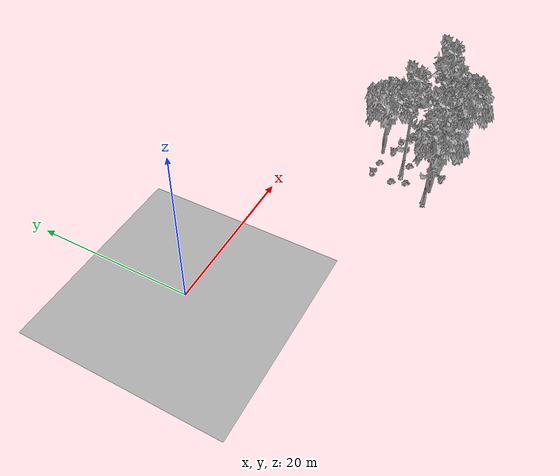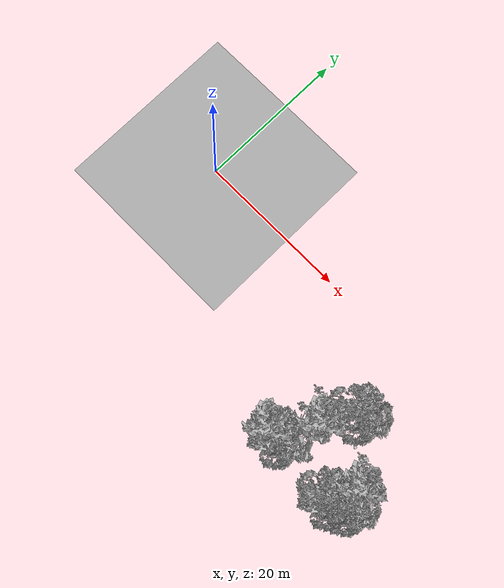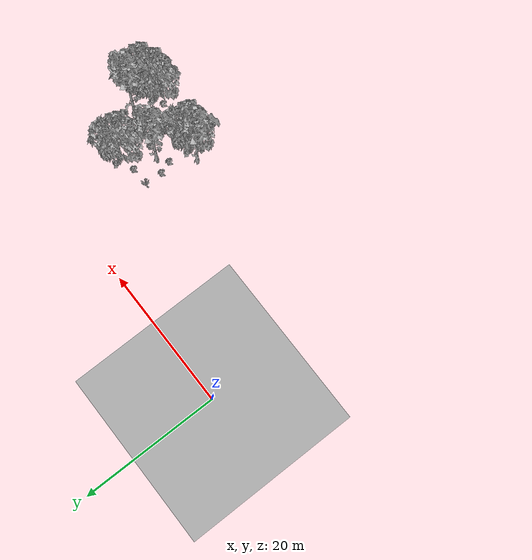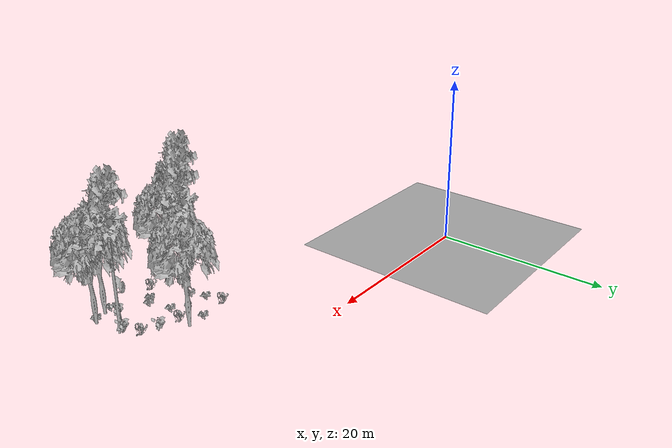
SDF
<sdf version="1.7">
 <world name="default">
  <model name="ground_plane">
   <static>1</static>
   <link name="link">
    <collision name="collision">
     <pose>-50 0 0 0 -0 0</pose>
     <geometry><plane><normal>0 0 1</normal><size>80 80</size></plane></geometry>
     <surface><contact><ode><min_depth>0.01</min_depth><max_vel>0</max_vel></ode></contact></surface>
    </collision>
    <visual name="grass">
     <cast_shadows>0</cast_shadows>
     <geometry>
      <mesh>
       <scale>0.46714285714285714 0.46714285714285714 0.1</scale>
       <uri>file://grass_plane/meshes/grass_plane.dae</uri>
      </mesh>
     </geometry>
    </visual>
   </link>
  </model>
  <model name="Tree 54">
   <static>1</static>
   <pose>26.59764709530539 -18.022613680822516 0 1.57079 -0 0</pose>
   <link name="link">
    <collision name="collision">
     <geometry><mesh><scale>3.5 5 3.5</scale><uri>model://tree_9/meshes/tree_9.obj</uri></mesh></geometry>
    </collision>
    <visual name="visual">
     <geometry><mesh><scale>3.5 5 3.5</scale><uri>model://tree_9/meshes/tree_9.obj</uri></mesh></geometry>
    </visual>
   </link>
  </model>
  <model name="Tree 80">
   <static>1</static>
   <pose>37.39226768586549 -15.485645370310799 0 1.57079 -0 0</pose>
   <link name="link">
    <collision name="collision">
     <geometry><mesh><scale>3.5 5 3.5</scale><uri>model://tree_9/meshes/tree_9.obj</uri></mesh></geometry>
    </collision>
    <visual name="visual">
     <geometry><mesh><scale>3.5 5 3.5</scale><uri>model://tree_9/meshes/tree_9.obj</uri></mesh></geometry>
    </visual>
   </link>
  </model>
  <model name="Tree 230">
   <static>1</static>
   <pose>38.46898598830006 -17.81733464807357 0 1.57079 -0 0</pose>
   <link name="link">
    <collision name="collision">
     <geometry><mesh><scale>3.5 5 3.5</scale><uri>model://tree_2/meshes/tree_2.obj</uri></mesh></geometry>
    </collision>
    <visual name="visual">
     <geometry><mesh><scale>3.5 5 3.5</scale><uri>model://tree_2/meshes/tree_2.obj</uri></mesh></geometry>
    </visual>
   </link>
  </model>
  <model name="Tree 338">
   <static>1</static>
   <pose>32.93583659797366 -10.030470318066705 0 1.57079 -0 0</pose>
   <link name="link">
    <collision name="collision">
     <geometry><mesh><scale>3.5 5 3.5</scale><uri>model://tree_2/meshes/tree_2.obj</uri></mesh></geometry>
    </collision>
    <visual name="visual">
     <geometry><mesh><scale>3.5 5 3.5</scale><uri>model://tree_2/meshes/tree_2.obj</uri></mesh></geometry>
    </visual>
   </link>
  </model>
  <model name="Tree 371">
   <static>1</static>
   <pose>30.08030520435321 -13.779856800431169 0 1.57079 -0 0</pose>
   <link name="link">
    <collision name="collision">
     <geometry><mesh><scale>3.5 5 3.5</scale><uri>model://tree_9/meshes/tree_9.obj</uri></mesh></geometry>
    </collision>
    <visual name="visual">
     <geometry><mesh><scale>3.5 5 3.5</scale><uri>model://tree_9/meshes/tree_9.obj</uri></mesh></geometry>
    </visual>
   </link>
  </model>
  <model name="Tree 426">
   <static>1</static>
   <pose>36.82441149007168 -18.714104671446343 0 1.57079 -0 0</pose>
   <link name="link">
    <collision name="collision">
     <geometry><mesh><scale>3.5 5 3.5</scale><uri>model://tree_2/meshes/tree_2.obj</uri></mesh></geometry>
    </collision>
    <visual name="visual">
     <geometry><mesh><scale>3.5 5 3.5</scale><uri>model://tree_2/meshes/tree_2.obj</uri></mesh></geometry>
    </visual>
   </link>
  </model>
  <model name="Tree 538">
   <static>1</static>
   <pose>28.614526150773074 -18.050153631286605 0 1.57079 -0 0</pose>
   <link name="link">
    <collision name="collision">
     <geometry><mesh><scale>3.5 5 3.5</scale><uri>model://tree_2/meshes/tree_2.obj</uri></mesh></geometry>
    </collision>
    <visual name="visual">
     <geometry><mesh><scale>3.5 5 3.5</scale><uri>model://tree_2/meshes/tree_2.obj</uri></mesh></geometry>
    </visual>
   </link>
  </model>
  <model name="Bush 68">
   <static>1</static>
   <pose>33.19026515405345 -11.434469333602042 0 1.57079 -0 0</pose>
   <link name="link">
    <collision name="collision">
     <geometry><mesh><scale>2 2 2</scale><uri>model://bush_4/meshes/bush_4.obj</uri></mesh></geometry>
     <surface><contact><collide_without_contact>false</collide_without_contact></contact></surface>
    </collision>
    <visual name="visual">
     <geometry><mesh><scale>2 2 2</scale><uri>model://bush_4/meshes/bush_4.obj</uri></mesh></geometry>
    </visual>
   </link>
  </model>
  <model name="Bush 111">
   <static>1</static>
   <pose>35.80478859081279 -19.32915524868494 0 1.57079 -0 0</pose>
   <link name="link">
    <collision name="collision">
     <geometry><mesh><scale>2 2 2</scale><uri>model://bush_2/meshes/bush_2.obj</uri></mesh></geometry>
     <surface><contact><collide_without_contact>false</collide_without_contact></contact></surface>
    </collision>
    <visual name="visual">
     <geometry><mesh><scale>2 2 2</scale><uri>model://bush_2/meshes/bush_2.obj</uri></mesh></geometry>
    </visual>
   </link>
  </model>
  <model name="Bush 118">
   <static>1</static>
   <pose>38.04031944414052 -18.675204157220968 0 1.57079 -0 0</pose>
   <link name="link">
    <collision name="collision">
     <geometry><mesh><scale>2 2 2</scale><uri>model://bush_2/meshes/bush_2.obj</uri></mesh></geometry>
     <surface><contact><collide_without_contact>false</collide_without_contact></contact></surface>
    </collision>
    <visual name="visual">
     <geometry><mesh><scale>2 2 2</scale><uri>model://bush_2/meshes/bush_2.obj</uri></mesh></geometry>
    </visual>
   </link>
  </model>
  <model name="Bush 124">
   <static>1</static>
   <pose>35.52376025473241 -11.69950424461172 0 1.57079 -0 0</pose>
   <link name="link">
    <collision name="collision">
     <geometry><mesh><scale>2 2 2</scale><uri>model://bush_0/meshes/bush_0.obj</uri></mesh></geometry>
     <surface><contact><collide_without_contact>false</collide_without_contact></contact></surface>
    </collision>
    <visual name="visual">
     <geometry><mesh><scale>2 2 2</scale><uri>model://bush_0/meshes/bush_0.obj</uri></mesh></geometry>
    </visual>
   </link>
  </model>
  <model name="Bush 225">
   <static>1</static>
   <pose>32.75467360908317 -16.882839646717542 0 1.57079 -0 0</pose>
   <link name="link">
    <collision name="collision">
     <geometry><mesh><scale>2 2 2</scale><uri>model://bush_2/meshes/bush_2.obj</uri></mesh></geometry>
     <surface><contact><collide_without_contact>false</collide_without_contact></contact></surface>
    </collision>
    <visual name="visual">
     <geometry><mesh><scale>2 2 2</scale><uri>model://bush_2/meshes/bush_2.obj</uri></mesh></geometry>
    </visual>
   </link>
  </model>
  <model name="Bush 255">
   <static>1</static>
   <pose>28.095140048945368 -13.163715731252008 0 1.57079 -0 0</pose>
   <link name="link">
    <collision name="collision">
     <geometry><mesh><scale>2 2 2</scale><uri>model://bush_2/meshes/bush_2.obj</uri></mesh></geometry>
     <surface><contact><collide_without_contact>false</collide_without_contact></contact></surface>
    </collision>
    <visual name="visual">
     <geometry><mesh><scale>2 2 2</scale><uri>model://bush_2/meshes/bush_2.obj</uri></mesh></geometry>
    </visual>
   </link>
  </model>
  <model name="Bush 330">
   <static>1</static>
   <pose>30.80464720744095 -10.476297341806902 0 1.57079 -0 0</pose>
   <link name="link">
    <collision name="collision">
     <geometry><mesh><scale>2 2 2</scale><uri>model://bush_2/meshes/bush_2.obj</uri></mesh></geometry>
     <surface><contact><collide_without_contact>false</collide_without_contact></contact></surface>
    </collision>
    <visual name="visual">
     <geometry><mesh><scale>2 2 2</scale><uri>model://bush_2/meshes/bush_2.obj</uri></mesh></geometry>
    </visual>
   </link>
  </model>
  <model name="Bush 348">
   <static>1</static>
   <pose>28.07912535090702 -10.55582489105771 0 1.57079 -0 0</pose>
   <link name="link">
    <collision name="collision">
     <geometry><mesh><scale>2 2 2</scale><uri>model://bush_4/meshes/bush_4.obj</uri></mesh></geometry>
     <surface><contact><collide_without_contact>false</collide_without_contact></contact></surface>
    </collision>
    <visual name="visual">
     <geometry><mesh><scale>2 2 2</scale><uri>model://bush_4/meshes/bush_4.obj</uri></mesh></geometry>
    </visual>
   </link>
  </model>
  <model name="Bush 427">
   <static>1</static>
   <pose>36.58618998376366 -17.070303188608218 0 1.57079 -0 0</pose>
   <link name="link">
    <collision name="collision">
     <geometry><mesh><scale>2 2 2</scale><uri>model://bush_0/meshes/bush_0.obj</uri></mesh></geometry>
     <surface><contact><collide_without_contact>false</collide_without_contact></contact></surface>
    </collision>
    <visual name="visual">
     <geometry><mesh><scale>2 2 2</scale><uri>model://bush_0/meshes/bush_0.obj</uri></mesh></geometry>
    </visual>
   </link>
  </model>
  <model name="Bush 428">
   <static>1</static>
   <pose>32.04037735347124 -14.22271197097696 0 1.57079 -0 0</pose>
   <link name="link">
    <collision name="collision">
     <geometry><mesh><scale>2 2 2</scale><uri>model://bush_2/meshes/bush_2.obj</uri></mesh></geometry>
     <surface><contact><collide_without_contact>false</collide_without_contact></contact></surface>
    </collision>
    <visual name="visual">
     <geometry><mesh><scale>2 2 2</scale><uri>model://bush_2/meshes/bush_2.obj</uri></mesh></geometry>
    </visual>
   </link>
  </model>
  <model name="Bush 471">
   <static>1</static>
   <pose>30.967603357822327 -18.818570762484768 0 1.57079 -0 0</pose>
   <link name="link">
    <collision name="collision">
     <geometry><mesh><scale>2 2 2</scale><uri>model://bush_4/meshes/bush_4.obj</uri></mesh></geometry>
     <surface><contact><collide_without_contact>false</collide_without_contact></contact></surface>
    </collision>
    <visual name="visual">
     <geometry><mesh><scale>2 2 2</scale><uri>model://bush_4/meshes/bush_4.obj</uri></mesh></geometry>
    </visual>
   </link>
  </model>
  <model name="Bush 472">
   <static>1</static>
   <pose>28.723532085414305 -14.920936465826244 0 1.57079 -0 0</pose>
   <link name="link">
    <collision name="collision">
     <geometry><mesh><scale>2 2 2</scale><uri>model://bush_2/meshes/bush_2.obj</uri></mesh></geometry>
     <surface><contact><collide_without_contact>false</collide_without_contact></contact></surface>
    </collision>
    <visual name="visual">
     <geometry><mesh><scale>2 2 2</scale><uri>model://bush_2/meshes/bush_2.obj</uri></mesh></geometry>
    </visual>
   </link>
  </model>
  <model name="Bush 535">
   <static>1</static>
   <pose>32.03422297603413 -17.656617347044072 0 1.57079 -0 0</pose>
   <link name="link">
    <collision name="collision">
     <geometry><mesh><scale>2 2 2</scale><uri>model://bush_2/meshes/bush_2.obj</uri></mesh></geometry>
     <surface><contact><collide_without_contact>false</collide_without_contact></contact></surface>
    </collision>
    <visual name="visual">
     <geometry><mesh><scale>2 2 2</scale><uri>model://bush_2/meshes/bush_2.obj</uri></mesh></geometry>
    </visual>
   </link>
  </model>
  <model name="Bush 551">
   <static>1</static>
   <pose>37.0675841008257 -12.552622513258875 0 1.57079 -0 0</pose>
   <link name="link">
    <collision name="collision">
     <geometry><mesh><scale>2 2 2</scale><uri>model://bush_4/meshes/bush_4.obj</uri></mesh></geometry>
     <surface><contact><collide_without_contact>false</collide_without_contact></contact></surface>
    </collision>
    <visual name="visual">
     <geometry><mesh><scale>2 2 2</scale><uri>model://bush_4/meshes/bush_4.obj</uri></mesh></geometry>
    </visual>
   </link>
  </model>
  <model name="Bush 614">
   <static>1</static>
   <pose>37.9524279728512 -14.286662408659812 0 1.57079 -0 0</pose>
   <link name="link">
    <collision name="collision">
     <geometry><mesh><scale>2 2 2</scale><uri>model://bush_0/meshes/bush_0.obj</uri></mesh></geometry>
     <surface><contact><collide_without_contact>false</collide_without_contact></contact></surface>
    </collision>
    <visual name="visual">
     <geometry><mesh><scale>2 2 2</scale><uri>model://bush_0/meshes/bush_0.obj</uri></mesh></geometry>
    </visual>
   </link>
  </model>
 </world>
</sdf>
